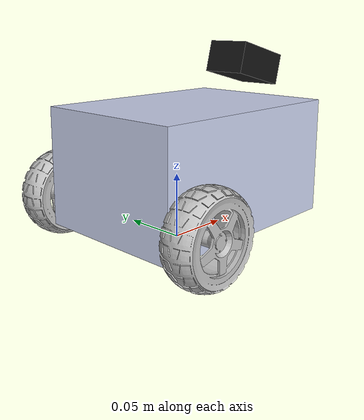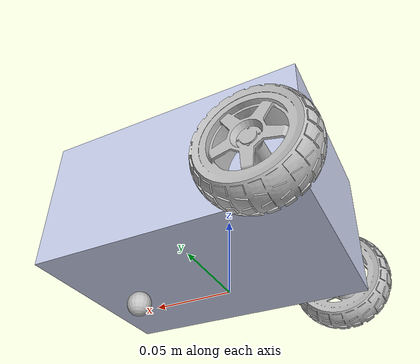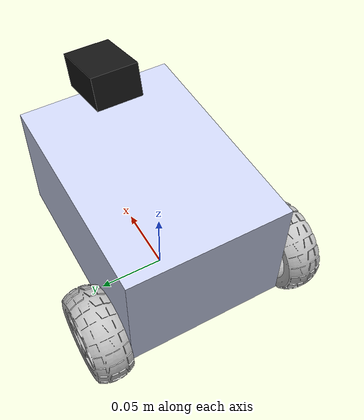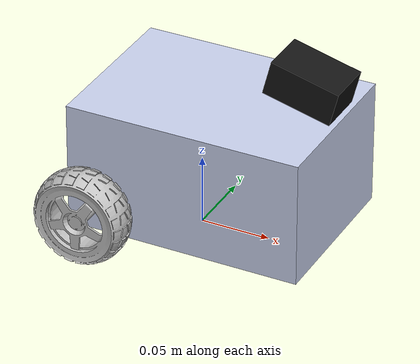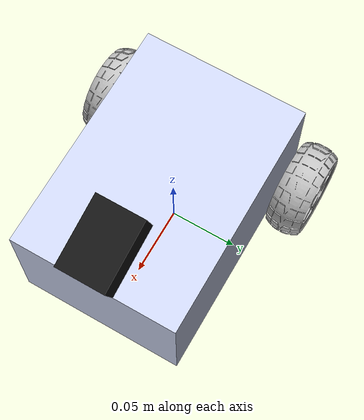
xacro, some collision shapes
<?xml version="1.0"?>
<robot xmlns:xacro="http://www.ros.org/wiki/xacro" name="robot_patrol">
  <material name="body_blue"><color rgba="0.79 0.82 0.93 1"/></material>
  <material name="wheel_gray"><color rgba="0.75 0.75 0.75 1"/></material>
  <material name="camera_black"><color rgba="0.08 0.08 0.08 1"/></material>

  <link name="base_footprint"/>
  <link name="base">
    <inertial>
      <origin xyz="0.0052003 -0.0001287 0.0624304" rpy="0 0 0"/>
      <mass value="0.8246764"/>
      <inertia ixx="0.000751968" ixy="-3.386e-7" ixz="1.329e-7"
               iyy="0.000720788" iyz="1.824e-7" izz="0.00137729"/>
    </inertial>
    <visual name="solidworks_base_assembly">
      <geometry><mesh filename="package://robot_description/meshes/base.STL"/></geometry>
      <material name="body_blue"/>
    </visual>
    <!-- Simplified collision with ground clearance to prevent scraping -->
    <collision name="chassis_collision">
      <origin xyz="0.01425 0 0.058" rpy="0 0 0"/>
      <geometry><box size="0.17 0.12 0.09"/></geometry>
    </collision>
  </link>
  <joint name="base_footprint_joint" type="fixed">
    <parent link="base_footprint"/>
    <child link="base"/>
    <origin xyz="0 0 0" rpy="0 0 0"/>
  </joint>

  <!-- Front Caster Support to prevent chassis dragging on the ground -->
  <link name="caster_front">
    <visual>
      <geometry><sphere radius="0.008"/></geometry>
      <material name="wheel_gray"/>
    </visual>
    <collision>
      <geometry><sphere radius="0.008"/></geometry>
    </collision>
    <inertial>
      <mass value="0.015"/>
      <inertia ixx="1e-6" ixy="0" ixz="0" iyy="1e-6" iyz="0" izz="1e-6"/>
    </inertial>
  </link>
  <joint name="caster_front_joint" type="fixed">
    <parent link="base"/>
    <child link="caster_front"/>
    <!-- Bottom of caster aligns with bottom of wheels at z=-0.002 (axle 0.032 - radius 0.034) -->
    <origin xyz="0.065 0 0.006" rpy="0 0 0"/>
  </joint>

  <link name="r_wheel">
    <inertial>
      <origin xyz="-4.13e-7 0.009655 1.07e-7" rpy="0 0 0"/>
      <mass value="0.0246779"/>
      <inertia ixx="1.01416e-5" ixy="-5.35e-11" ixz="5.24e-10"
               iyy="1.69693e-5" iyz="3.41e-11" izz="1.01419e-5"/>
    </inertial>
    <visual name="right_wheel_visual">
      <geometry><mesh filename="package://robot_description/meshes/r_wheel.STL"/></geometry>
      <material name="wheel_gray"/>
    </visual>
    <collision name="right_wheel_collision">
      <origin xyz="0 0 0" rpy="1.570796 0 0"/>
      <geometry><cylinder radius="0.034" length="0.028"/></geometry>
    </collision>
  </link>
  <joint name="right_wheel_joint" type="continuous">
    <parent link="base"/>
    <child link="r_wheel"/>
    <origin xyz="-0.051 -0.0856 0.032" rpy="0 0 0"/>
    <axis xyz="0 1 0"/>
  </joint>

  <link name="l_wheel">
    <inertial>
      <origin xyz="4.12e-7 -0.009655 1.10e-7" rpy="0 0 0"/>
      <mass value="0.0246779"/>
      <inertia ixx="1.01417e-5" ixy="-5.32e-11" ixz="-5.27e-10"
               iyy="1.69693e-5" iyz="-3.45e-11" izz="1.01419e-5"/>
    </inertial>
    <visual name="left_wheel_visual">
      <geometry><mesh filename="package://robot_description/meshes/l_wheel.STL"/></geometry>
      <material name="wheel_gray"/>
    </visual>
    <collision name="left_wheel_collision">
      <origin xyz="0 0 0" rpy="1.570796 0 0"/>
      <geometry><cylinder radius="0.034" length="0.028"/></geometry>
    </collision>
  </link>
  <joint name="left_wheel_joint" type="continuous">
    <parent link="base"/>
    <child link="l_wheel"/>
    <origin xyz="-0.051 0.0856 0.032" rpy="0 0 0"/>
    <axis xyz="0 1 0"/>
  </joint>

  <link name="imu">
    <inertial>
      <origin xyz="-0.004064 0.000377 -0.001687" rpy="0 0 0"/>
      <mass value="0.001075"/>
      <inertia ixx="4.663e-8" ixy="-2.604e-12" ixz="-1.700e-14"
               iyy="3.735e-8" iyz="-1.772e-14" izz="8.342e-8"/>
    </inertial>
    <visual name="imu_visual">
      <geometry><mesh filename="package://robot_description/meshes/imu.STL"/></geometry>
      <material name="wheel_gray"/>
    </visual>
  </link>
  <joint name="imu_joint" type="fixed">
    <parent link="base"/>
    <child link="imu"/>
    <origin xyz="-0.008261 -0.000442 0.0391" rpy="0 0 0"/>
  </joint>

  <link name="camera_link">
    <visual name="camera_visual">
      <geometry><box size="0.05 0.035 0.025"/></geometry>
      <material name="camera_black"/>
    </visual>
    <collision name="camera_collision">
      <geometry><box size="0.05 0.035 0.025"/></geometry>
    </collision>
    <inertial>
      <mass value="0.03"/>
      <inertia ixx="1e-5" ixy="0" ixz="0" iyy="1e-5" iyz="0" izz="1e-5"/>
    </inertial>
  </link>
  <joint name="camera_mount_joint" type="fixed">
    <parent link="base"/>
    <child link="camera_link"/>
    <origin xyz="0.08 0 0.13" rpy="0 0.25 0"/>
  </joint>
  <link name="camera_optical_frame"/>
  <joint name="camera_optical_joint" type="fixed">
    <parent link="camera_link"/>
    <child link="camera_optical_frame"/>
    <origin xyz="0 0 0" rpy="-1.5708 0 -1.5708"/>
  </joint>

  <!-- Gazebo Contact and Physics Properties -->
  <gazebo reference="caster_front">
    <mu1>0.0</mu1>
    <mu2>0.0</mu2>
  </gazebo>
  <gazebo reference="r_wheel">
    <mu1>1.5</mu1>
    <mu2>1.5</mu2>
    <kp>1000000.0</kp>
    <kd>10.0</kd>
  </gazebo>
  <gazebo reference="l_wheel">
    <mu1>1.5</mu1>
    <mu2>1.5</mu2>
    <kp>1000000.0</kp>
    <kd>10.0</kd>
  </gazebo>

  <gazebo reference="imu">
    <sensor name="imu_sensor" type="imu">
      <always_on>true</always_on>
      <update_rate>100</update_rate>
      <topic>/imu/data</topic>
    </sensor>
  </gazebo>
  <gazebo reference="camera_link">
    <sensor name="front_rgb_camera" type="camera">
      <always_on>true</always_on>
      <update_rate>30</update_rate>
      <visualize>true</visualize>
      <topic>/camera/image_raw</topic>
      <camera>
        <horizontal_fov>1.3962634</horizontal_fov>
        <image><width>640</width><height>480</height><format>R8G8B8</format></image>
        <clip><near>0.05</near><far>35.0</far></clip>
      </camera>
    </sensor>
  </gazebo>

  <gazebo>
    <plugin filename="gz-sim-diff-drive-system" name="gz::sim::systems::DiffDrive">
      <left_joint>left_wheel_joint</left_joint>
      <right_joint>right_wheel_joint</right_joint>
      <wheel_separation>0.1712</wheel_separation>
      <wheel_radius>0.034</wheel_radius>
      <topic>/cmd_vel</topic>
      <odom_topic>/odom</odom_topic>
      <tf_topic>/tf</tf_topic>
      <frame_id>odom</frame_id>
      <child_frame_id>base_footprint</child_frame_id>
      <odom_publish_frequency>50</odom_publish_frequency>
    </plugin>
  </gazebo>
  <gazebo>
    <plugin filename="gz-sim-joint-state-publisher-system" name="gz::sim::systems::JointStatePublisher">
      <topic>/joint_states</topic>
      <joint_name>left_wheel_joint</joint_name>
      <joint_name>right_wheel_joint</joint_name>
    </plugin>
  </gazebo>
</robot>
